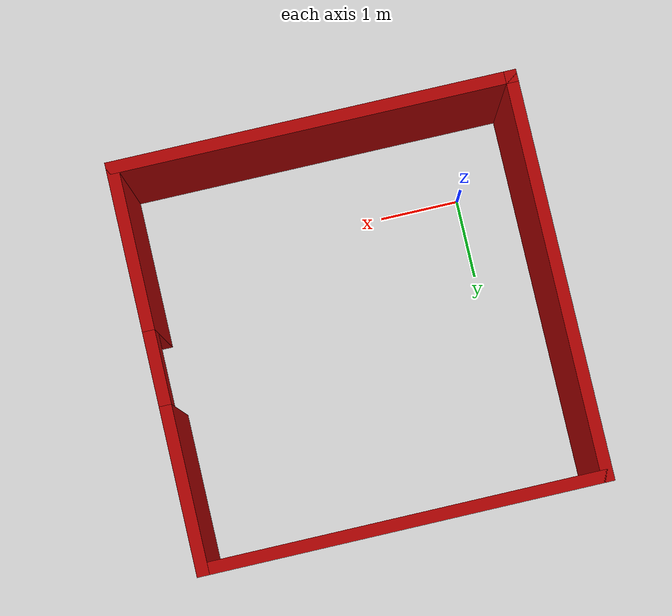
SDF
<?xml version='1.0'?>
<sdf version='1.6'>
  <model name='red_5m_room'>
    <pose frame=''>1.6484 1.44578 0 0 -0 0</pose>
    <link name='Wall_5'>
      <collision name='Wall_5_Collision'>
        <geometry>
          <box>
            <size>5 0.15 2.5</size>
          </box>
        </geometry>
        <pose frame=''>0 0 1.25 0 -0 0</pose>
      </collision>
      <visual name='Wall_5_Visual'>
        <pose frame=''>0 0 1.25 0 -0 0</pose>
        <geometry>
          <box>
            <size>5 0.15 2.5</size>
          </box>
        </geometry>
        <material>
          <script>
            <uri>file://media/materials/scripts/gazebo.material</uri>
            <name>Gazebo/Grey</name>
          </script>
          <ambient>0.666667 0 0 1</ambient>
        </material>
        <meta>
          <layer>0</layer>
        </meta>
      </visual>
      <pose frame=''>-2.425 0 0 0 0 -1.5708</pose>
    </link>
    <link name='Wall_6'>
      <collision name='Wall_6_Collision'>
        <geometry>
          <box>
            <size>5 0.15 2.5</size>
          </box>
        </geometry>
        <pose frame=''>0 0 1.25 0 -0 0</pose>
      </collision>
      <visual name='Wall_6_Visual'>
        <pose frame=''>0 0 1.25 0 -0 0</pose>
        <geometry>
          <box>
            <size>5 0.15 2.5</size>
          </box>
        </geometry>
        <material>
          <script>
            <uri>file://media/materials/scripts/gazebo.material</uri>
            <name>Gazebo/Grey</name>
          </script>
          <ambient>0.666667 0 0 1</ambient>
        </material>
        <meta>
          <layer>0</layer>
        </meta>
      </visual>
      <pose frame=''>0 -2.425 0 0 -0 0</pose>
    </link>
    <link name='Wall_7'>
      <pose frame=''>2.425 0 0 0 -0 1.5708</pose>
      <visual name='Wall_7_Visual_0'>
        <pose frame=''>-1.46931 0 1.25 0 -0 0</pose>
        <geometry>
          <box>
            <size>2.06137 0.15 2.5</size>
          </box>
        </geometry>
        <material>
          <script>
            <uri>file://media/materials/scripts/gazebo.material</uri>
            <name>Gazebo/Grey</name>
          </script>
          <ambient>0.666667 0 0 1</ambient>
        </material>
        <meta>
          <layer>0</layer>
        </meta>
      </visual>
      <collision name='Wall_7_Collision_0'>
        <geometry>
          <box>
            <size>2.06137 0.15 2.5</size>
          </box>
        </geometry>
        <pose frame=''>-1.46931 0 1.25 0 -0 0</pose>
      </collision>
      <visual name='Wall_7_Visual_1'>
        <pose frame=''>1.48069 0 1.25 0 -0 0</pose>
        <geometry>
          <box>
            <size>2.03863 0.15 2.5</size>
          </box>
        </geometry>
        <material>
          <script>
            <uri>file://media/materials/scripts/gazebo.material</uri>
            <name>Gazebo/Grey</name>
          </script>
          <ambient>0.666667 0 0 1</ambient>
        </material>
        <meta>
          <layer>0</layer>
        </meta>
      </visual>
      <collision name='Wall_7_Collision_1'>
        <geometry>
          <box>
            <size>2.03863 0.15 2.5</size>
          </box>
        </geometry>
        <pose frame=''>1.48069 0 1.25 0 -0 0</pose>
      </collision>
      <visual name='Wall_7_Visual_2'>
        <pose frame=''>0.011371 0 2.25 0 -0 0</pose>
        <geometry>
          <box>
            <size>0.9 0.15 0.5</size>
          </box>
        </geometry>
        <material>
          <script>
            <uri>file://media/materials/scripts/gazebo.material</uri>
            <name>Gazebo/Grey</name>
          </script>
          <ambient>0.666667 0 0 1</ambient>
        </material>
        <meta>
          <layer>0</layer>
        </meta>
      </visual>
      <collision name='Wall_7_Collision_2'>
        <geometry>
          <box>
            <size>0.9 0.15 0.5</size>
          </box>
        </geometry>
        <pose frame=''>0.011371 0 2.25 0 -0 0</pose>
      </collision>
    </link>
    <link name='Wall_8'>
      <collision name='Wall_8_Collision'>
        <geometry>
          <box>
            <size>5 0.15 2.5</size>
          </box>
        </geometry>
        <pose frame=''>0 0 1.25 0 -0 0</pose>
      </collision>
      <visual name='Wall_8_Visual'>
        <pose frame=''>0 0 1.25 0 -0 0</pose>
        <geometry>
          <box>
            <size>5 0.15 2.5</size>
          </box>
        </geometry>
        <material>
          <script>
            <uri>file://media/materials/scripts/gazebo.material</uri>
            <name>Gazebo/Grey</name>
          </script>
          <ambient>0.666667 0 0 1</ambient>
        </material>
        <meta>
          <layer>0</layer>
        </meta>
      </visual>
      <pose frame=''>0 2.425 0 0 -0 3.14159</pose>
    </link>
    <static>1</static>
  </model>
</sdf>
